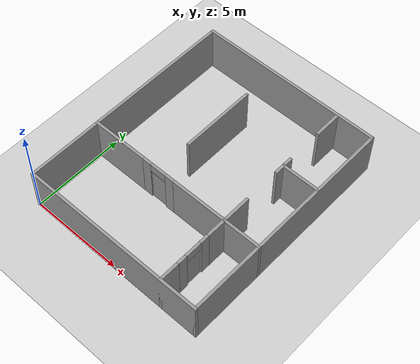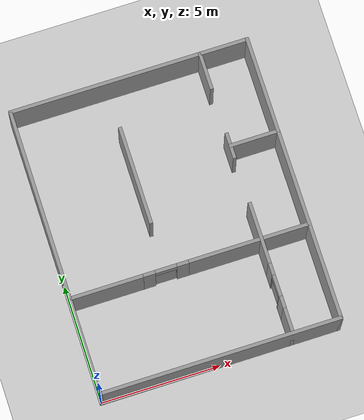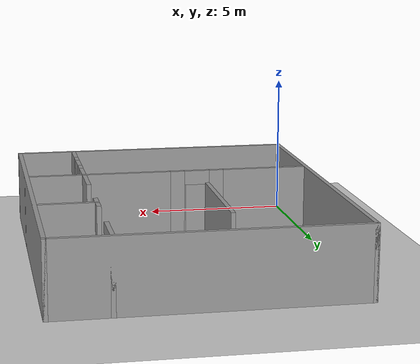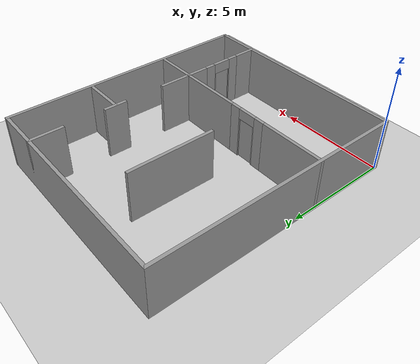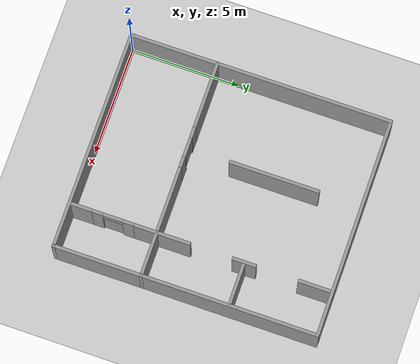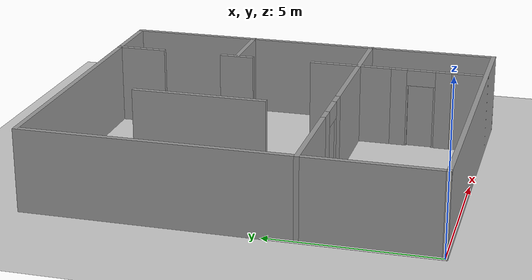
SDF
<sdf version="1.7">
 <world name="default">
  <model name="ground_plane">
   <static>1</static>
   <link name="link">
    <collision name="collision">
     <geometry><plane><normal>0 0 1</normal><size>100 100</size></plane></geometry>
     <surface><friction><ode><mu>100</mu><mu2>50</mu2></ode></friction></surface>
    </collision>
    <visual name="visual">
     <cast_shadows>0</cast_shadows>
     <geometry><plane><normal>0 0 1</normal><size>100 100</size></plane></geometry>
     <material>
      <script><uri>file://media/materials/scripts/gazebo.material</uri><name>Gazebo/Grey</name></script>
     </material>
    </visual>
   </link>
  </model>
  <model name="laboratory">
   <link name="Wall_0">
    <pose>0 -6 0 0 -0 0</pose>
    <visual name="Wall_0_Visual">
     <pose>0 0 1.25 0 -0 0</pose>
     <geometry><box><size>10.15 0.15 2.5</size></box></geometry>
     <material>
      <script><uri>file://media/materials/scripts/gazebo.material</uri><name>Gazebo/Grey</name></script>
      <ambient>1 1 1 1</ambient>
      <shader type="pixel"/>
     </material>
     <meta><layer>0</layer></meta>
    </visual>
    <collision name="Wall_0_Collision">
     <pose>0 0 1.25 0 -0 0</pose>
     <geometry><box><size>10.15 0.15 2.5</size></box></geometry>
     <surface>
      <friction>
       <ode><mu>1</mu><mu2>1</mu2><fdir1>0 0 0</fdir1><slip1>0</slip1><slip2>0</slip2></ode>
       <torsional>
        <coefficient>1</coefficient>
        <patch_radius>0</patch_radius>
        <surface_radius>0</surface_radius>
        <use_patch_radius>1</use_patch_radius>
        <ode><slip>0</slip></ode>
       </torsional>
      </friction>
      <bounce><restitution_coefficient>0</restitution_coefficient><threshold>1e+06</threshold></bounce>
      <contact>
       <collide_without_contact>0</collide_without_contact>
       <collide_without_contact_bitmask>1</collide_without_contact_bitmask>
       <collide_bitmask>1</collide_bitmask>
       <ode>
        <soft_cfm>0</soft_cfm>
        <soft_erp>0.2</soft_erp>
        <kp>1e+13</kp>
        <kd>1</kd>
        <max_vel>0.01</max_vel>
        <min_depth>0</min_depth>
       </ode>
       <bullet>
        <split_impulse>1</split_impulse>
        <split_impulse_penetration_threshold>-0.01</split_impulse_penetration_threshold>
        <soft_cfm>0</soft_cfm>
        <soft_erp>0.2</soft_erp>
        <kp>1e+13</kp>
        <kd>1</kd>
       </bullet>
      </contact>
     </surface>
    </collision>
   </link>
   <link name="Wall_10">
    <pose>-1 -2 0 0 -0 0</pose>
    <visual name="Wall_10_Visual_0">
     <pose>-2.5125 0 1.25 0 -0 0</pose>
     <geometry><box><size>3.125 0.15 2.5</size></box></geometry>
     <material>
      <script><uri>file://media/materials/scripts/gazebo.material</uri><name>Gazebo/Grey</name></script>
      <ambient>1 1 1 1</ambient>
      <shader type="pixel"/>
     </material>
     <meta><layer>0</layer></meta>
    </visual>
    <visual name="Wall_10_Visual_1">
     <pose>2.5125 0 1.25 0 -0 0</pose>
     <geometry><box><size>3.125 0.15 2.5</size></box></geometry>
     <material>
      <script><uri>file://media/materials/scripts/gazebo.material</uri><name>Gazebo/Grey</name></script>
      <ambient>1 1 1 1</ambient>
      <shader type="pixel"/>
     </material>
     <meta><layer>0</layer></meta>
    </visual>
    <collision name="Wall_10_Collision_0">
     <pose>-2.5125 0 1.25 0 -0 0</pose>
     <geometry><box><size>3.125 0.15 2.5</size></box></geometry>
     <surface>
      <friction>
       <ode><mu>1</mu><mu2>1</mu2><fdir1>0 0 0</fdir1><slip1>0</slip1><slip2>0</slip2></ode>
       <torsional>
        <coefficient>1</coefficient>
        <patch_radius>0</patch_radius>
        <surface_radius>0</surface_radius>
        <use_patch_radius>1</use_patch_radius>
        <ode><slip>0</slip></ode>
       </torsional>
      </friction>
      <bounce><restitution_coefficient>0</restitution_coefficient><threshold>1e+06</threshold></bounce>
      <contact>
       <collide_without_contact>0</collide_without_contact>
       <collide_without_contact_bitmask>1</collide_without_contact_bitmask>
       <collide_bitmask>1</collide_bitmask>
       <ode>
        <soft_cfm>0</soft_cfm>
        <soft_erp>0.2</soft_erp>
        <kp>1e+13</kp>
        <kd>1</kd>
        <max_vel>0.01</max_vel>
        <min_depth>0</min_depth>
       </ode>
       <bullet>
        <split_impulse>1</split_impulse>
        <split_impulse_penetration_threshold>-0.01</split_impulse_penetration_threshold>
        <soft_cfm>0</soft_cfm>
        <soft_erp>0.2</soft_erp>
        <kp>1e+13</kp>
        <kd>1</kd>
       </bullet>
      </contact>
     </surface>
    </collision>
    <collision name="Wall_10_Collision_1">
     <pose>2.5125 0 1.25 0 -0 0</pose>
     <geometry><box><size>3.125 0.15 2.5</size></box></geometry>
     <surface>
      <friction>
       <ode><mu>1</mu><mu2>1</mu2><fdir1>0 0 0</fdir1><slip1>0</slip1><slip2>0</slip2></ode>
       <torsional>
        <coefficient>1</coefficient>
        <patch_radius>0</patch_radius>
        <surface_radius>0</surface_radius>
        <use_patch_radius>1</use_patch_radius>
        <ode><slip>0</slip></ode>
       </torsional>
      </friction>
      <bounce><restitution_coefficient>0</restitution_coefficient><threshold>1e+06</threshold></bounce>
      <contact>
       <collide_without_contact>0</collide_without_contact>
       <collide_without_contact_bitmask>1</collide_without_contact_bitmask>
       <collide_bitmask>1</collide_bitmask>
       <ode>
        <soft_cfm>0</soft_cfm>
        <soft_erp>0.2</soft_erp>
        <kp>1e+13</kp>
        <kd>1</kd>
        <max_vel>0.01</max_vel>
        <min_depth>0</min_depth>
       </ode>
       <bullet>
        <split_impulse>1</split_impulse>
        <split_impulse_penetration_threshold>-0.01</split_impulse_penetration_threshold>
        <soft_cfm>0</soft_cfm>
        <soft_erp>0.2</soft_erp>
        <kp>1e+13</kp>
        <kd>1</kd>
       </bullet>
      </contact>
     </surface>
    </collision>
   </link>
   <link name="Wall_12">
    <pose>4 2 0 0 -0 0</pose>
    <visual name="Wall_12_Visual">
     <pose>0 0 1.25 0 -0 0</pose>
     <geometry><box><size>2.15 0.15 2.5</size></box></geometry>
     <material>
      <script><uri>file://media/materials/scripts/gazebo.material</uri><name>Gazebo/Grey</name></script>
      <ambient>1 1 1 1</ambient>
      <shader type="pixel"/>
     </material>
     <meta><layer>0</layer></meta>
    </visual>
    <collision name="Wall_12_Collision">
     <pose>0 0 1.25 0 -0 0</pose>
     <geometry><box><size>2.15 0.15 2.5</size></box></geometry>
     <surface>
      <friction>
       <ode><mu>1</mu><mu2>1</mu2><fdir1>0 0 0</fdir1><slip1>0</slip1><slip2>0</slip2></ode>
       <torsional>
        <coefficient>1</coefficient>
        <patch_radius>0</patch_radius>
        <surface_radius>0</surface_radius>
        <use_patch_radius>1</use_patch_radius>
        <ode><slip>0</slip></ode>
       </torsional>
      </friction>
      <bounce><restitution_coefficient>0</restitution_coefficient><threshold>1e+06</threshold></bounce>
      <contact>
       <collide_without_contact>0</collide_without_contact>
       <collide_without_contact_bitmask>1</collide_without_contact_bitmask>
       <collide_bitmask>1</collide_bitmask>
       <ode>
        <soft_cfm>0</soft_cfm>
        <soft_erp>0.2</soft_erp>
        <kp>1e+13</kp>
        <kd>1</kd>
        <max_vel>0.01</max_vel>
        <min_depth>0</min_depth>
       </ode>
       <bullet>
        <split_impulse>1</split_impulse>
        <split_impulse_penetration_threshold>-0.01</split_impulse_penetration_threshold>
        <soft_cfm>0</soft_cfm>
        <soft_erp>0.2</soft_erp>
        <kp>1e+13</kp>
        <kd>1</kd>
       </bullet>
      </contact>
     </surface>
    </collision>
   </link>
   <link name="Wall_15">
    <pose>4 -2 0 0 -0 0</pose>
    <visual name="Wall_15_Visual">
     <pose>0 0 1.25 0 -0 0</pose>
     <geometry><box><size>2.15 0.15 2.5</size></box></geometry>
     <material>
      <script><uri>file://media/materials/scripts/gazebo.material</uri><name>Gazebo/Grey</name></script>
      <ambient>1 1 1 1</ambient>
      <shader type="pixel"/>
     </material>
     <meta><layer>0</layer></meta>
    </visual>
    <collision name="Wall_15_Collision">
     <pose>0 0 1.25 0 -0 0</pose>
     <geometry><box><size>2.15 0.15 2.5</size></box></geometry>
     <surface>
      <friction>
       <ode><mu>1</mu><mu2>1</mu2><fdir1>0 0 0</fdir1><slip1>0</slip1><slip2>0</slip2></ode>
       <torsional>
        <coefficient>1</coefficient>
        <patch_radius>0</patch_radius>
        <surface_radius>0</surface_radius>
        <use_patch_radius>1</use_patch_radius>
        <ode><slip>0</slip></ode>
       </torsional>
      </friction>
      <bounce><restitution_coefficient>0</restitution_coefficient><threshold>1e+06</threshold></bounce>
      <contact>
       <collide_without_contact>0</collide_without_contact>
       <collide_without_contact_bitmask>1</collide_without_contact_bitmask>
       <collide_bitmask>1</collide_bitmask>
       <ode>
        <soft_cfm>0</soft_cfm>
        <soft_erp>0.2</soft_erp>
        <kp>1e+13</kp>
        <kd>1</kd>
        <max_vel>0.01</max_vel>
        <min_depth>0</min_depth>
       </ode>
       <bullet>
        <split_impulse>1</split_impulse>
        <split_impulse_penetration_threshold>-0.01</split_impulse_penetration_threshold>
        <soft_cfm>0</soft_cfm>
        <soft_erp>0.2</soft_erp>
        <kp>1e+13</kp>
        <kd>1</kd>
       </bullet>
      </contact>
     </surface>
    </collision>
   </link>
   <link name="Wall_17">
    <pose>-1 2 0 0 -0 1.5708</pose>
    <visual name="Wall_17_Visual">
     <pose>0 0 1.25 0 -0 0</pose>
     <geometry><box><size>4.15 0.15 2.5</size></box></geometry>
     <material>
      <script><uri>file://media/materials/scripts/gazebo.material</uri><name>Gazebo/Grey</name></script>
      <ambient>1 1 1 1</ambient>
      <shader type="pixel"/>
     </material>
     <meta><layer>0</layer></meta>
    </visual>
    <collision name="Wall_17_Collision">
     <pose>0 0 1.25 0 -0 0</pose>
     <geometry><box><size>4.15 0.15 2.5</size></box></geometry>
     <surface>
      <friction>
       <ode><mu>1</mu><mu2>1</mu2><fdir1>0 0 0</fdir1><slip1>0</slip1><slip2>0</slip2></ode>
       <torsional>
        <coefficient>1</coefficient>
        <patch_radius>0</patch_radius>
        <surface_radius>0</surface_radius>
        <use_patch_radius>1</use_patch_radius>
        <ode><slip>0</slip></ode>
       </torsional>
      </friction>
      <bounce><restitution_coefficient>0</restitution_coefficient><threshold>1e+06</threshold></bounce>
      <contact>
       <collide_without_contact>0</collide_without_contact>
       <collide_without_contact_bitmask>1</collide_without_contact_bitmask>
       <collide_bitmask>1</collide_bitmask>
       <ode>
        <soft_cfm>0</soft_cfm>
        <soft_erp>0.2</soft_erp>
        <kp>1e+13</kp>
        <kd>1</kd>
        <max_vel>0.01</max_vel>
        <min_depth>0</min_depth>
       </ode>
       <bullet>
        <split_impulse>1</split_impulse>
        <split_impulse_penetration_threshold>-0.01</split_impulse_penetration_threshold>
        <soft_cfm>0</soft_cfm>
        <soft_erp>0.2</soft_erp>
        <kp>1e+13</kp>
        <kd>1</kd>
       </bullet>
      </contact>
     </surface>
    </collision>
   </link>
   <link name="Wall_2">
    <pose>-5 0 0 0 -0 1.5708</pose>
    <visual name="Wall_2_Visual">
     <pose>0 0 1.25 0 -0 0</pose>
     <geometry><box><size>12.15 0.15 2.5</size></box></geometry>
     <material>
      <script><uri>file://media/materials/scripts/gazebo.material</uri><name>Gazebo/Grey</name></script>
      <ambient>1 1 1 1</ambient>
      <shader type="pixel"/>
     </material>
     <meta><layer>0</layer></meta>
    </visual>
    <collision name="Wall_2_Collision">
     <pose>0 0 1.25 0 -0 0</pose>
     <geometry><box><size>12.15 0.15 2.5</size></box></geometry>
     <surface>
      <friction>
       <ode><mu>1</mu><mu2>1</mu2><fdir1>0 0 0</fdir1><slip1>0</slip1><slip2>0</slip2></ode>
       <torsional>
        <coefficient>1</coefficient>
        <patch_radius>0</patch_radius>
        <surface_radius>0</surface_radius>
        <use_patch_radius>1</use_patch_radius>
        <ode><slip>0</slip></ode>
       </torsional>
      </friction>
      <bounce><restitution_coefficient>0</restitution_coefficient><threshold>1e+06</threshold></bounce>
      <contact>
       <collide_without_contact>0</collide_without_contact>
       <collide_without_contact_bitmask>1</collide_without_contact_bitmask>
       <collide_bitmask>1</collide_bitmask>
       <ode>
        <soft_cfm>0</soft_cfm>
        <soft_erp>0.2</soft_erp>
        <kp>1e+13</kp>
        <kd>1</kd>
        <max_vel>0.01</max_vel>
        <min_depth>0</min_depth>
       </ode>
       <bullet>
        <split_impulse>1</split_impulse>
        <split_impulse_penetration_threshold>-0.01</split_impulse_penetration_threshold>
        <soft_cfm>0</soft_cfm>
        <soft_erp>0.2</soft_erp>
        <kp>1e+13</kp>
        <kd>1</kd>
       </bullet>
      </contact>
     </surface>
    </collision>
   </link>
   <link name="Wall_4">
    <pose>0 6 0 0 -0 0</pose>
    <visual name="Wall_4_Visual">
     <pose>0 0 1.25 0 -0 0</pose>
     <geometry><box><size>10.15 0.15 2.5</size></box></geometry>
     <material>
      <script><uri>file://media/materials/scripts/gazebo.material</uri><name>Gazebo/Grey</name></script>
      <ambient>1 1 1 1</ambient>
      <shader type="pixel"/>
     </material>
     <meta><layer>0</layer></meta>
    </visual>
    <collision name="Wall_4_Collision">
     <pose>0 0 1.25 0 -0 0</pose>
     <geometry><box><size>10.15 0.15 2.5</size></box></geometry>
     <surface>
      <friction>
       <ode><mu>1</mu><mu2>1</mu2><fdir1>0 0 0</fdir1><slip1>0</slip1><slip2>0</slip2></ode>
       <torsional>
        <coefficient>1</coefficient>
        <patch_radius>0</patch_radius>
        <surface_radius>0</surface_radius>
        <use_patch_radius>1</use_patch_radius>
        <ode><slip>0</slip></ode>
       </torsional>
      </friction>
      <bounce><restitution_coefficient>0</restitution_coefficient><threshold>1e+06</threshold></bounce>
      <contact>
       <collide_without_contact>0</collide_without_contact>
       <collide_without_contact_bitmask>1</collide_without_contact_bitmask>
       <collide_bitmask>1</collide_bitmask>
       <ode>
        <soft_cfm>0</soft_cfm>
        <soft_erp>0.2</soft_erp>
        <kp>1e+13</kp>
        <kd>1</kd>
        <max_vel>0.01</max_vel>
        <min_depth>0</min_depth>
       </ode>
       <bullet>
        <split_impulse>1</split_impulse>
        <split_impulse_penetration_threshold>-0.01</split_impulse_penetration_threshold>
        <soft_cfm>0</soft_cfm>
        <soft_erp>0.2</soft_erp>
        <kp>1e+13</kp>
        <kd>1</kd>
       </bullet>
      </contact>
     </surface>
    </collision>
   </link>
   <link name="Wall_6">
    <pose>5 0 0 0 0 -1.5708</pose>
    <visual name="Wall_6_Visual">
     <pose>0 0 1.25 0 -0 0</pose>
     <geometry><box><size>12.15 0.15 2.5</size></box></geometry>
     <material>
      <script><uri>file://media/materials/scripts/gazebo.material</uri><name>Gazebo/Grey</name></script>
      <ambient>1 1 1 1</ambient>
      <shader type="pixel"/>
     </material>
     <meta><layer>0</layer></meta>
    </visual>
    <collision name="Wall_6_Collision">
     <pose>0 0 1.25 0 -0 0</pose>
     <geometry><box><size>12.15 0.15 2.5</size></box></geometry>
     <surface>
      <friction>
       <ode><mu>1</mu><mu2>1</mu2><fdir1>0 0 0</fdir1><slip1>0</slip1><slip2>0</slip2></ode>
       <torsional>
        <coefficient>1</coefficient>
        <patch_radius>0</patch_radius>
        <surface_radius>0</surface_radius>
        <use_patch_radius>1</use_patch_radius>
        <ode><slip>0</slip></ode>
       </torsional>
      </friction>
      <bounce><restitution_coefficient>0</restitution_coefficient><threshold>1e+06</threshold></bounce>
      <contact>
       <collide_without_contact>0</collide_without_contact>
       <collide_without_contact_bitmask>1</collide_without_contact_bitmask>
       <collide_bitmask>1</collide_bitmask>
       <ode>
        <soft_cfm>0</soft_cfm>
        <soft_erp>0.2</soft_erp>
        <kp>1e+13</kp>
        <kd>1</kd>
        <max_vel>0.01</max_vel>
        <min_depth>0</min_depth>
       </ode>
       <bullet>
        <split_impulse>1</split_impulse>
        <split_impulse_penetration_threshold>-0.01</split_impulse_penetration_threshold>
        <soft_cfm>0</soft_cfm>
        <soft_erp>0.2</soft_erp>
        <kp>1e+13</kp>
        <kd>1</kd>
       </bullet>
      </contact>
     </surface>
    </collision>
   </link>
   <link name="Wall_8">
    <pose>3 0 0 0 -0 1.5708</pose>
    <inertial>
     <mass>1</mass>
     <inertia><ixx>1</ixx><ixy>0</ixy><ixz>0</ixz><iyy>1</iyy><iyz>0</iyz><izz>1</izz></inertia>
    </inertial>
    <visual name="Wall_8_Visual_0">
     <pose>-5.5125 0 1.25 0 -0 0</pose>
     <geometry><box><size>1.125 0.15 2.5</size></box></geometry>
     <material>
      <script><uri>file://media/materials/scripts/gazebo.material</uri><name>Gazebo/Grey</name></script>
      <ambient>1 1 1 1</ambient>
      <shader type="pixel"><normal_map>__default__</normal_map></shader>
      <diffuse>0.7 0.7 0.7 1</diffuse>
      <specular>0.01 0.01 0.01 1</specular>
      <emissive>0 0 0 1</emissive>
     </material>
     <meta><layer>0</layer></meta>
    </visual>
    <visual name="Wall_8_Visual_1">
     <pose>-1.75 0 1.25 0 -0 0</pose>
     <geometry><box><size>2.6 0.15 2.5</size></box></geometry>
     <material>
      <script><uri>file://media/materials/scripts/gazebo.material</uri><name>Gazebo/Grey</name></script>
      <ambient>1 1 1 1</ambient>
      <shader type="pixel"><normal_map>__default__</normal_map></shader>
      <diffuse>0.7 0.7 0.7 1</diffuse>
      <specular>0.01 0.01 0.01 1</specular>
      <emissive>0 0 0 1</emissive>
     </material>
     <meta><layer>0</layer></meta>
    </visual>
    <visual name="Wall_8_Visual_2">
     <pose>2 0 1.25 0 -0 0</pose>
     <geometry><box><size>1.1 0.15 2.5</size></box></geometry>
     <material>
      <script><uri>file://media/materials/scripts/gazebo.material</uri><name>Gazebo/Grey</name></script>
      <ambient>1 1 1 1</ambient>
      <shader type="pixel"><normal_map>__default__</normal_map></shader>
      <diffuse>0.7 0.7 0.7 1</diffuse>
      <specular>0.01 0.01 0.01 1</specular>
      <emissive>0 0 0 1</emissive>
     </material>
     <meta><layer>0</layer></meta>
    </visual>
    <visual name="Wall_8_Visual_3">
     <pose>5.2625 0 1.25 0 -0 0</pose>
     <geometry><box><size>1.625 0.15 2.5</size></box></geometry>
     <material>
      <script><uri>file://media/materials/scripts/gazebo.material</uri><name>Gazebo/Grey</name></script>
      <ambient>1 1 1 1</ambient>
      <shader type="pixel"><normal_map>__default__</normal_map></shader>
      <diffuse>0.7 0.7 0.7 1</diffuse>
      <specular>0.01 0.01 0.01 1</specular>
      <emissive>0 0 0 1</emissive>
     </material>
     <meta><layer>0</layer></meta>
    </visual>
    <collision name="Wall_8_Collision_0">
     <pose>-5.5125 0 1.25 0 -0 0</pose>
     <geometry><box><size>1.125 0.15 2.5</size></box></geometry>
     <surface>
      <friction>
       <ode><mu>1</mu><mu2>1</mu2><fdir1>0 0 0</fdir1><slip1>0</slip1><slip2>0</slip2></ode>
       <torsional>
        <coefficient>1</coefficient>
        <patch_radius>0</patch_radius>
        <surface_radius>0</surface_radius>
        <use_patch_radius>1</use_patch_radius>
        <ode><slip>0</slip></ode>
       </torsional>
      </friction>
      <bounce><restitution_coefficient>0</restitution_coefficient><threshold>1e+06</threshold></bounce>
      <contact>
       <collide_without_contact>0</collide_without_contact>
       <collide_without_contact_bitmask>1</collide_without_contact_bitmask>
       <collide_bitmask>1</collide_bitmask>
       <ode>
        <soft_cfm>0</soft_cfm>
        <soft_erp>0.2</soft_erp>
        <kp>1e+13</kp>
        <kd>1</kd>
        <max_vel>0.01</max_vel>
        <min_depth>0</min_depth>
       </ode>
       <bullet>
        <split_impulse>1</split_impulse>
        <split_impulse_penetration_threshold>-0.01</split_impulse_penetration_threshold>
        <soft_cfm>0</soft_cfm>
        <soft_erp>0.2</soft_erp>
        <kp>1e+13</kp>
        <kd>1</kd>
       </bullet>
      </contact>
     </surface>
    </collision>
    <collision name="Wall_8_Collision_2">
     <pose>2 0 1.25 0 -0 0</pose>
     <geometry><box><size>1.1 0.15 2.5</size></box></geometry>
     <surface>
      <friction>
       <ode><mu>1</mu><mu2>1</mu2><fdir1>0 0 0</fdir1><slip1>0</slip1><slip2>0</slip2></ode>
       <torsional>
        <coefficient>1</coefficient>
        <patch_radius>0</patch_radius>
        <surface_radius>0</surface_radius>
        <use_patch_radius>1</use_patch_radius>
        <ode><slip>0</slip></ode>
       </torsional>
      </friction>
      <bounce><restitution_coefficient>0</restitution_coefficient><threshold>1e+06</threshold></bounce>
      <contact>
       <collide_without_contact>0</collide_without_contact>
       <collide_without_contact_bitmask>1</collide_without_contact_bitmask>
       <collide_bitmask>1</collide_bitmask>
       <ode>
        <soft_cfm>0</soft_cfm>
        <soft_erp>0.2</soft_erp>
        <kp>1e+13</kp>
        <kd>1</kd>
        <max_vel>0.01</max_vel>
        <min_depth>0</min_depth>
       </ode>
       <bullet>
        <split_impulse>1</split_impulse>
        <split_impulse_penetration_threshold>-0.01</split_impulse_penetration_threshold>
        <soft_cfm>0</soft_cfm>
        <soft_erp>0.2</soft_erp>
        <kp>1e+13</kp>
        <kd>1</kd>
       </bullet>
      </contact>
     </surface>
    </collision>
    <collision name="Wall_8_Collision_1">
     <pose>-1.75 0 1.25 0 -0 0</pose>
     <geometry><box><size>2.6 0.15 2.5</size></box></geometry>
     <surface>
      <friction>
       <ode><mu>1</mu><mu2>1</mu2><fdir1>0 0 0</fdir1><slip1>0</slip1><slip2>0</slip2></ode>
       <torsional>
        <coefficient>1</coefficient>
        <patch_radius>0</patch_radius>
        <surface_radius>0</surface_radius>
        <use_patch_radius>1</use_patch_radius>
        <ode><slip>0</slip></ode>
       </torsional>
      </friction>
      <bounce><restitution_coefficient>0</restitution_coefficient><threshold>1e+06</threshold></bounce>
      <contact>
       <collide_without_contact>0</collide_without_contact>
       <collide_without_contact_bitmask>1</collide_without_contact_bitmask>
       <collide_bitmask>1</collide_bitmask>
       <ode>
        <soft_cfm>0</soft_cfm>
        <soft_erp>0.2</soft_erp>
        <kp>1e+13</kp>
        <kd>1</kd>
        <max_vel>0.01</max_vel>
        <min_depth>0</min_depth>
       </ode>
       <bullet>
        <split_impulse>1</split_impulse>
        <split_impulse_penetration_threshold>-0.01</split_impulse_penetration_threshold>
        <soft_cfm>0</soft_cfm>
        <soft_erp>0.2</soft_erp>
        <kp>1e+13</kp>
        <kd>1</kd>
       </bullet>
      </contact>
     </surface>
    </collision>
    <collision name="Wall_8_Collision_3">
     <pose>5.2625 0 1.25 0 -0 0</pose>
     <geometry><box><size>1.625 0.15 2.5</size></box></geometry>
     <surface>
      <friction>
       <ode><mu>1</mu><mu2>1</mu2><fdir1>0 0 0</fdir1><slip1>0</slip1><slip2>0</slip2></ode>
       <torsional>
        <coefficient>1</coefficient>
        <patch_radius>0</patch_radius>
        <surface_radius>0</surface_radius>
        <use_patch_radius>1</use_patch_radius>
        <ode><slip>0</slip></ode>
       </torsional>
      </friction>
      <bounce><restitution_coefficient>0</restitution_coefficient><threshold>1e+06</threshold></bounce>
      <contact>
       <collide_without_contact>0</collide_without_contact>
       <collide_without_contact_bitmask>1</collide_without_contact_bitmask>
       <collide_bitmask>1</collide_bitmask>
       <ode>
        <soft_cfm>0</soft_cfm>
        <soft_erp>0.2</soft_erp>
        <kp>1e+13</kp>
        <kd>1</kd>
        <max_vel>0.01</max_vel>
        <min_depth>0</min_depth>
       </ode>
       <bullet>
        <split_impulse>1</split_impulse>
        <split_impulse_penetration_threshold>-0.01</split_impulse_penetration_threshold>
        <soft_cfm>0</soft_cfm>
        <soft_erp>0.2</soft_erp>
        <kp>1e+13</kp>
        <kd>1</kd>
       </bullet>
      </contact>
     </surface>
    </collision>
   </link>
   <static>1</static>
   <pose>5 6 0 0 -0 0</pose>
  </model>
  <model name="wall_with_door_no_gap">
   <link name="Wall">
    <pose>0 0 0 0 -4e-06 0</pose>
    <inertial>
     <inertia><ixx>1</ixx><ixy>0</ixy><ixz>0</ixz><iyy>1</iyy><iyz>0</iyz><izz>1</izz></inertia>
     <mass>1</mass>
    </inertial>
    <visual name="Wall_Visual_4">
     <pose>0.425 -0.055 1 0 -0 0</pose>
     <geometry><box><size>0.05 0.04 2</size></box></geometry>
     <material>
      <script><uri>file://media/materials/scripts/gazebo.material</uri><name>Gazebo/Grey</name></script>
      <ambient>1 1 1 1</ambient>
      <shader type="pixel"><normal_map>__default__</normal_map></shader>
      <emissive>0 0 0 1</emissive>
      <diffuse>0.7 0.7 0.7 1</diffuse>
      <specular>0.01 0.01 0.01 1</specular>
     </material>
     <meta><layer>0</layer></meta>
    </visual>
    <visual name="Wall_Visual_0">
     <pose>-0.7 0 1.25 0 -0 0</pose>
     <geometry><box><size>0.5 0.15 2.5</size></box></geometry>
     <material>
      <script><uri>file://media/materials/scripts/gazebo.material</uri><name>Gazebo/Grey</name></script>
      <ambient>1 1 1 1</ambient>
      <shader type="pixel"><normal_map>__default__</normal_map></shader>
      <emissive>0 0 0 1</emissive>
      <diffuse>0.7 0.7 0.7 1</diffuse>
      <specular>0.01 0.01 0.01 1</specular>
     </material>
     <meta><layer>0</layer></meta>
    </visual>
    <visual name="Wall_visual_3">
     <pose>-0.425 -0.055 1 0 -0 0</pose>
     <geometry><box><size>0.05 0.04 2</size></box></geometry>
     <material>
      <script><uri>file://media/materials/scripts/gazebo.material</uri><name>Gazebo/Grey</name></script>
      <ambient>1 1 1 1</ambient>
      <shader type="pixel"><normal_map>__default__</normal_map></shader>
      <emissive>0 0 0 1</emissive>
      <diffuse>0.7 0.7 0.7 1</diffuse>
      <specular>0.01 0.01 0.01 1</specular>
     </material>
     <meta><layer>0</layer></meta>
    </visual>
    <visual name="Wall_Visual_1">
     <pose>0.7 0 1.25 0 -0 0</pose>
     <geometry><box><size>0.5 0.15 2.5</size></box></geometry>
     <material>
      <script><uri>file://media/materials/scripts/gazebo.material</uri><name>Gazebo/Grey</name></script>
      <ambient>1 1 1 1</ambient>
      <shader type="pixel"><normal_map>__default__</normal_map></shader>
      <emissive>0 0 0 1</emissive>
      <diffuse>0.7 0.7 0.7 1</diffuse>
      <specular>0.01 0.01 0.01 1</specular>
     </material>
     <meta><layer>0</layer></meta>
    </visual>
    <visual name="Wall_Visual_2">
     <pose>0 0 2.25 0 -0 0</pose>
     <geometry><box><size>0.9 0.15 0.5</size></box></geometry>
     <material>
      <script><uri>file://media/materials/scripts/gazebo.material</uri><name>Gazebo/Grey</name></script>
      <ambient>1 1 1 1</ambient>
      <shader type="pixel"><normal_map>__default__</normal_map></shader>
      <emissive>0 0 0 1</emissive>
      <diffuse>0.7 0.7 0.7 1</diffuse>
      <specular>0.01 0.01 0.01 1</specular>
     </material>
     <meta><layer>0</layer></meta>
    </visual>
    <collision name="Wall_Collision_3">
     <pose>-0.425 -0.055 1 0 -0 0</pose>
     <geometry><box><size>0.05 0.04 2</size></box></geometry>
     <surface>
      <friction>
       <ode><mu>1</mu><mu2>1</mu2><fdir1>0 0 0</fdir1><slip1>0</slip1><slip2>0</slip2></ode>
       <torsional>
        <coefficient>1</coefficient>
        <patch_radius>0</patch_radius>
        <surface_radius>0</surface_radius>
        <use_patch_radius>1</use_patch_radius>
        <ode><slip>0</slip></ode>
       </torsional>
      </friction>
      <bounce><restitution_coefficient>0</restitution_coefficient><threshold>1e+06</threshold></bounce>
      <contact>
       <collide_without_contact>0</collide_without_contact>
       <collide_without_contact_bitmask>1</collide_without_contact_bitmask>
       <collide_bitmask>1</collide_bitmask>
       <ode>
        <soft_cfm>0</soft_cfm>
        <soft_erp>0.2</soft_erp>
        <kp>1e+13</kp>
        <kd>1</kd>
        <max_vel>0.01</max_vel>
        <min_depth>0</min_depth>
       </ode>
       <bullet>
        <split_impulse>1</split_impulse>
        <split_impulse_penetration_threshold>-0.01</split_impulse_penetration_threshold>
        <soft_cfm>0</soft_cfm>
        <soft_erp>0.2</soft_erp>
        <kp>1e+13</kp>
        <kd>1</kd>
       </bullet>
      </contact>
     </surface>
    </collision>
    <collision name="Wall_Collision_4">
     <pose>0.425 -0.055 1 0 -0 0</pose>
     <geometry><box><size>0.05 0.04 2</size></box></geometry>
     <surface>
      <friction>
       <ode><mu>1</mu><mu2>1</mu2><fdir1>0 0 0</fdir1><slip1>0</slip1><slip2>0</slip2></ode>
       <torsional>
        <coefficient>1</coefficient>
        <patch_radius>0</patch_radius>
        <surface_radius>0</surface_radius>
        <use_patch_radius>1</use_patch_radius>
        <ode><slip>0</slip></ode>
       </torsional>
      </friction>
      <bounce><restitution_coefficient>0</restitution_coefficient><threshold>1e+06</threshold></bounce>
      <contact>
       <collide_without_contact>0</collide_without_contact>
       <collide_without_contact_bitmask>1</collide_without_contact_bitmask>
       <collide_bitmask>1</collide_bitmask>
       <ode>
        <soft_cfm>0</soft_cfm>
        <soft_erp>0.2</soft_erp>
        <kp>1e+13</kp>
        <kd>1</kd>
        <max_vel>0.01</max_vel>
        <min_depth>0</min_depth>
       </ode>
       <bullet>
        <split_impulse>1</split_impulse>
        <split_impulse_penetration_threshold>-0.01</split_impulse_penetration_threshold>
        <soft_cfm>0</soft_cfm>
        <soft_erp>0.2</soft_erp>
        <kp>1e+13</kp>
        <kd>1</kd>
       </bullet>
      </contact>
     </surface>
    </collision>
    <collision name="Wall_Collision_1">
     <pose>0.7 0 1.25 0 -0 0</pose>
     <geometry><box><size>0.5 0.15 2.5</size></box></geometry>
     <surface>
      <friction>
       <ode><mu>1</mu><mu2>1</mu2><fdir1>0 0 0</fdir1><slip1>0</slip1><slip2>0</slip2></ode>
       <torsional>
        <coefficient>1</coefficient>
        <patch_radius>0</patch_radius>
        <surface_radius>0</surface_radius>
        <use_patch_radius>1</use_patch_radius>
        <ode><slip>0</slip></ode>
       </torsional>
      </friction>
      <bounce><restitution_coefficient>0</restitution_coefficient><threshold>1e+06</threshold></bounce>
      <contact>
       <collide_without_contact>0</collide_without_contact>
       <collide_without_contact_bitmask>1</collide_without_contact_bitmask>
       <collide_bitmask>1</collide_bitmask>
       <ode>
        <soft_cfm>0</soft_cfm>
        <soft_erp>0.2</soft_erp>
        <kp>1e+13</kp>
        <kd>1</kd>
        <max_vel>0.01</max_vel>
        <min_depth>0</min_depth>
       </ode>
       <bullet>
        <split_impulse>1</split_impulse>
        <split_impulse_penetration_threshold>-0.01</split_impulse_penetration_threshold>
        <soft_cfm>0</soft_cfm>
        <soft_erp>0.2</soft_erp>
        <kp>1e+13</kp>
        <kd>1</kd>
       </bullet>
      </contact>
     </surface>
    </collision>
    <collision name="Wall_Collision_0">
     <pose>-0.7 0 1.25 0 -0 0</pose>
     <geometry><box><size>0.5 0.15 2.5</size></box></geometry>
     <surface>
      <friction>
       <ode><mu>1</mu><mu2>1</mu2><fdir1>0 0 0</fdir1><slip1>0</slip1><slip2>0</slip2></ode>
       <torsional>
        <coefficient>1</coefficient>
        <patch_radius>0</patch_radius>
        <surface_radius>0</surface_radius>
        <use_patch_radius>1</use_patch_radius>
        <ode><slip>0</slip></ode>
       </torsional>
      </friction>
      <bounce><restitution_coefficient>0</restitution_coefficient><threshold>1e+06</threshold></bounce>
      <contact>
       <collide_without_contact>0</collide_without_contact>
       <collide_without_contact_bitmask>1</collide_without_contact_bitmask>
       <collide_bitmask>1</collide_bitmask>
       <ode>
        <soft_cfm>0</soft_cfm>
        <soft_erp>0.2</soft_erp>
        <kp>1e+13</kp>
        <kd>1</kd>
        <max_vel>0.01</max_vel>
        <min_depth>0</min_depth>
       </ode>
       <bullet>
        <split_impulse>1</split_impulse>
        <split_impulse_penetration_threshold>-0.01</split_impulse_penetration_threshold>
        <soft_cfm>0</soft_cfm>
        <soft_erp>0.2</soft_erp>
        <kp>1e+13</kp>
        <kd>1</kd>
       </bullet>
      </contact>
     </surface>
    </collision>
    <collision name="Wall_Collision_2">
     <pose>0 0 2.25 0 -0 0</pose>
     <geometry><box><size>0.9 0.15 0.5</size></box></geometry>
     <surface>
      <friction>
       <ode><mu>1</mu><mu2>1</mu2><fdir1>0 0 0</fdir1><slip1>0</slip1><slip2>0</slip2></ode>
       <torsional>
        <coefficient>1</coefficient>
        <patch_radius>0</patch_radius>
        <surface_radius>0</surface_radius>
        <use_patch_radius>1</use_patch_radius>
        <ode><slip>0</slip></ode>
       </torsional>
      </friction>
      <bounce><restitution_coefficient>0</restitution_coefficient><threshold>1e+06</threshold></bounce>
      <contact>
       <collide_without_contact>0</collide_without_contact>
       <collide_without_contact_bitmask>1</collide_without_contact_bitmask>
       <collide_bitmask>1</collide_bitmask>
       <ode>
        <soft_cfm>0</soft_cfm>
        <soft_erp>0.2</soft_erp>
        <kp>1e+13</kp>
        <kd>1</kd>
        <max_vel>0.01</max_vel>
        <min_depth>0</min_depth>
       </ode>
       <bullet>
        <split_impulse>1</split_impulse>
        <split_impulse_penetration_threshold>-0.01</split_impulse_penetration_threshold>
        <soft_cfm>0</soft_cfm>
        <soft_erp>0.2</soft_erp>
        <kp>1e+13</kp>
        <kd>1</kd>
       </bullet>
      </contact>
     </surface>
    </collision>
    <static>1</static>
   </link>
   <link name="door">
    <inertial>
     <mass>1</mass>
     <inertia>
      <ixx>0.166667</ixx>
      <ixy>0</ixy>
      <ixz>0</ixz>
      <iyy>0.166667</iyy>
      <iyz>0</iyz>
      <izz>0.166667</izz>
     </inertia>
    </inertial>
    <pose>-0 -0 1 0 -4e-06 0</pose>
    <visual name="visual">
     <pose>0.01 0 0 0 -0 0</pose>
     <geometry><box><size>0.86 0.04 2</size></box></geometry>
     <material>
      <lighting>1</lighting>
      <script><uri>file://media/materials/scripts/gazebo.material</uri><name>Gazebo/Grey</name></script>
      <shader type="pixel"><normal_map>__default__</normal_map></shader>
      <ambient>0.3 0.3 0.3 1</ambient>
      <diffuse>0.7 0.7 0.7 1</diffuse>
      <specular>0.01 0.01 0.01 1</specular>
      <emissive>0 0 0 1</emissive>
     </material>
    </visual>
    <collision name="collision">
     <pose>0.01 0 0 0 -0 0</pose>
     <geometry><box><size>0.84 0.04 2</size></box></geometry>
     <surface>
      <friction>
       <ode><mu>1</mu><mu2>1</mu2><fdir1>0 0 0</fdir1><slip1>0</slip1><slip2>0</slip2></ode>
       <torsional>
        <coefficient>1</coefficient>
        <patch_radius>0</patch_radius>
        <surface_radius>0</surface_radius>
        <use_patch_radius>1</use_patch_radius>
        <ode><slip>0</slip></ode>
       </torsional>
      </friction>
      <bounce><restitution_coefficient>0</restitution_coefficient><threshold>1e+06</threshold></bounce>
      <contact>
       <collide_without_contact>0</collide_without_contact>
       <collide_without_contact_bitmask>1</collide_without_contact_bitmask>
       <collide_bitmask>1</collide_bitmask>
       <ode>
        <soft_cfm>0</soft_cfm>
        <soft_erp>0.2</soft_erp>
        <kp>1e+13</kp>
        <kd>1</kd>
        <max_vel>0.01</max_vel>
        <min_depth>0</min_depth>
       </ode>
       <bullet>
        <split_impulse>1</split_impulse>
        <split_impulse_penetration_threshold>-0.01</split_impulse_penetration_threshold>
        <soft_cfm>0</soft_cfm>
        <soft_erp>0.2</soft_erp>
        <kp>1e+13</kp>
        <kd>1</kd>
       </bullet>
      </contact>
     </surface>
    </collision>
    <static>0</static>
   </link>
   <joint name="Door_JOINT" type="revolute">
    <parent>Wall</parent>
    <child>door</child>
    <pose>-0.43 0 0 0 -0 0</pose>
    <axis>
     <xyz>0 0 1</xyz>
     <limit><lower>0</lower><upper>1.57</upper><effort>-1</effort><velocity>-1</velocity></limit>
     <dynamics>
      <spring_reference>0</spring_reference>
      <spring_stiffness>0</spring_stiffness>
      <damping>0</damping>
      <friction>0</friction>
     </dynamics>
    </axis>
    <physics>
     <ode><limit><cfm>0</cfm><erp>0.2</erp></limit><suspension><cfm>0</cfm><erp>0.2</erp></suspension></ode>
    </physics>
   </joint>
   <joint name="WALL_FIXED" type="fixed"><parent>world</parent><child>Wall</child></joint>
   <plugin name="wall_and_door_plugin" filename="libDoorControlPlugin.so"/>
   <static>0</static>
   <pose>4 4 0 0 -0 3.14</pose>
  </model>
  <model name="wall_with_door_no_gap_0">
   <link name="Wall">
    <pose>0 0 0 0 -4e-06 0</pose>
    <inertial>
     <inertia><ixx>1</ixx><ixy>0</ixy><ixz>0</ixz><iyy>1</iyy><iyz>0</iyz><izz>1</izz></inertia>
     <mass>1</mass>
    </inertial>
    <visual name="Wall_Visual_4">
     <pose>0.425 -0.055 1 0 -0 0</pose>
     <geometry><box><size>0.05 0.04 2</size></box></geometry>
     <material>
      <script><uri>file://media/materials/scripts/gazebo.material</uri><name>Gazebo/Grey</name></script>
      <ambient>1 1 1 1</ambient>
      <shader type="pixel"><normal_map>__default__</normal_map></shader>
      <emissive>0 0 0 1</emissive>
      <diffuse>0.7 0.7 0.7 1</diffuse>
      <specular>0.01 0.01 0.01 1</specular>
     </material>
     <meta><layer>0</layer></meta>
    </visual>
    <visual name="Wall_Visual_0">
     <pose>-0.7 0 1.25 0 -0 0</pose>
     <geometry><box><size>0.5 0.15 2.5</size></box></geometry>
     <material>
      <script><uri>file://media/materials/scripts/gazebo.material</uri><name>Gazebo/Grey</name></script>
      <ambient>1 1 1 1</ambient>
      <shader type="pixel"><normal_map>__default__</normal_map></shader>
      <emissive>0 0 0 1</emissive>
      <diffuse>0.7 0.7 0.7 1</diffuse>
      <specular>0.01 0.01 0.01 1</specular>
     </material>
     <meta><layer>0</layer></meta>
    </visual>
    <visual name="Wall_visual_3">
     <pose>-0.425 -0.055 1 0 -0 0</pose>
     <geometry><box><size>0.05 0.04 2</size></box></geometry>
     <material>
      <script><uri>file://media/materials/scripts/gazebo.material</uri><name>Gazebo/Grey</name></script>
      <ambient>1 1 1 1</ambient>
      <shader type="pixel"><normal_map>__default__</normal_map></shader>
      <emissive>0 0 0 1</emissive>
      <diffuse>0.7 0.7 0.7 1</diffuse>
      <specular>0.01 0.01 0.01 1</specular>
     </material>
     <meta><layer>0</layer></meta>
    </visual>
    <visual name="Wall_Visual_1">
     <pose>0.7 0 1.25 0 -0 0</pose>
     <geometry><box><size>0.5 0.15 2.5</size></box></geometry>
     <material>
      <script><uri>file://media/materials/scripts/gazebo.material</uri><name>Gazebo/Grey</name></script>
      <ambient>1 1 1 1</ambient>
      <shader type="pixel"><normal_map>__default__</normal_map></shader>
      <emissive>0 0 0 1</emissive>
      <diffuse>0.7 0.7 0.7 1</diffuse>
      <specular>0.01 0.01 0.01 1</specular>
     </material>
     <meta><layer>0</layer></meta>
    </visual>
    <visual name="Wall_Visual_2">
     <pose>0 0 2.25 0 -0 0</pose>
     <geometry><box><size>0.9 0.15 0.5</size></box></geometry>
     <material>
      <script><uri>file://media/materials/scripts/gazebo.material</uri><name>Gazebo/Grey</name></script>
      <ambient>1 1 1 1</ambient>
      <shader type="pixel"><normal_map>__default__</normal_map></shader>
      <emissive>0 0 0 1</emissive>
      <diffuse>0.7 0.7 0.7 1</diffuse>
      <specular>0.01 0.01 0.01 1</specular>
     </material>
     <meta><layer>0</layer></meta>
    </visual>
    <collision name="Wall_Collision_3">
     <pose>-0.425 -0.055 1 0 -0 0</pose>
     <geometry><box><size>0.05 0.04 2</size></box></geometry>
     <surface>
      <friction>
       <ode><mu>1</mu><mu2>1</mu2><fdir1>0 0 0</fdir1><slip1>0</slip1><slip2>0</slip2></ode>
       <torsional>
        <coefficient>1</coefficient>
        <patch_radius>0</patch_radius>
        <surface_radius>0</surface_radius>
        <use_patch_radius>1</use_patch_radius>
        <ode><slip>0</slip></ode>
       </torsional>
      </friction>
      <bounce><restitution_coefficient>0</restitution_coefficient><threshold>1e+06</threshold></bounce>
      <contact>
       <collide_without_contact>0</collide_without_contact>
       <collide_without_contact_bitmask>1</collide_without_contact_bitmask>
       <collide_bitmask>1</collide_bitmask>
       <ode>
        <soft_cfm>0</soft_cfm>
        <soft_erp>0.2</soft_erp>
        <kp>1e+13</kp>
        <kd>1</kd>
        <max_vel>0.01</max_vel>
        <min_depth>0</min_depth>
       </ode>
       <bullet>
        <split_impulse>1</split_impulse>
        <split_impulse_penetration_threshold>-0.01</split_impulse_penetration_threshold>
        <soft_cfm>0</soft_cfm>
        <soft_erp>0.2</soft_erp>
        <kp>1e+13</kp>
        <kd>1</kd>
       </bullet>
      </contact>
     </surface>
    </collision>
    <collision name="Wall_Collision_4">
     <pose>0.425 -0.055 1 0 -0 0</pose>
     <geometry><box><size>0.05 0.04 2</size></box></geometry>
     <surface>
      <friction>
       <ode><mu>1</mu><mu2>1</mu2><fdir1>0 0 0</fdir1><slip1>0</slip1><slip2>0</slip2></ode>
       <torsional>
        <coefficient>1</coefficient>
        <patch_radius>0</patch_radius>
        <surface_radius>0</surface_radius>
        <use_patch_radius>1</use_patch_radius>
        <ode><slip>0</slip></ode>
       </torsional>
      </friction>
      <bounce><restitution_coefficient>0</restitution_coefficient><threshold>1e+06</threshold></bounce>
      <contact>
       <collide_without_contact>0</collide_without_contact>
       <collide_without_contact_bitmask>1</collide_without_contact_bitmask>
       <collide_bitmask>1</collide_bitmask>
       <ode>
        <soft_cfm>0</soft_cfm>
        <soft_erp>0.2</soft_erp>
        <kp>1e+13</kp>
        <kd>1</kd>
        <max_vel>0.01</max_vel>
        <min_depth>0</min_depth>
       </ode>
       <bullet>
        <split_impulse>1</split_impulse>
        <split_impulse_penetration_threshold>-0.01</split_impulse_penetration_threshold>
        <soft_cfm>0</soft_cfm>
        <soft_erp>0.2</soft_erp>
        <kp>1e+13</kp>
        <kd>1</kd>
       </bullet>
      </contact>
     </surface>
    </collision>
    <collision name="Wall_Collision_1">
     <pose>0.7 0 1.25 0 -0 0</pose>
     <geometry><box><size>0.5 0.15 2.5</size></box></geometry>
     <surface>
      <friction>
       <ode><mu>1</mu><mu2>1</mu2><fdir1>0 0 0</fdir1><slip1>0</slip1><slip2>0</slip2></ode>
       <torsional>
        <coefficient>1</coefficient>
        <patch_radius>0</patch_radius>
        <surface_radius>0</surface_radius>
        <use_patch_radius>1</use_patch_radius>
        <ode><slip>0</slip></ode>
       </torsional>
      </friction>
      <bounce><restitution_coefficient>0</restitution_coefficient><threshold>1e+06</threshold></bounce>
      <contact>
       <collide_without_contact>0</collide_without_contact>
       <collide_without_contact_bitmask>1</collide_without_contact_bitmask>
       <collide_bitmask>1</collide_bitmask>
       <ode>
        <soft_cfm>0</soft_cfm>
        <soft_erp>0.2</soft_erp>
        <kp>1e+13</kp>
        <kd>1</kd>
        <max_vel>0.01</max_vel>
        <min_depth>0</min_depth>
       </ode>
       <bullet>
        <split_impulse>1</split_impulse>
        <split_impulse_penetration_threshold>-0.01</split_impulse_penetration_threshold>
        <soft_cfm>0</soft_cfm>
        <soft_erp>0.2</soft_erp>
        <kp>1e+13</kp>
        <kd>1</kd>
       </bullet>
      </contact>
     </surface>
    </collision>
    <collision name="Wall_Collision_0">
     <pose>-0.7 0 1.25 0 -0 0</pose>
     <geometry><box><size>0.5 0.15 2.5</size></box></geometry>
     <surface>
      <friction>
       <ode><mu>1</mu><mu2>1</mu2><fdir1>0 0 0</fdir1><slip1>0</slip1><slip2>0</slip2></ode>
       <torsional>
        <coefficient>1</coefficient>
        <patch_radius>0</patch_radius>
        <surface_radius>0</surface_radius>
        <use_patch_radius>1</use_patch_radius>
        <ode><slip>0</slip></ode>
       </torsional>
      </friction>
      <bounce><restitution_coefficient>0</restitution_coefficient><threshold>1e+06</threshold></bounce>
      <contact>
       <collide_without_contact>0</collide_without_contact>
       <collide_without_contact_bitmask>1</collide_without_contact_bitmask>
       <collide_bitmask>1</collide_bitmask>
       <ode>
        <soft_cfm>0</soft_cfm>
        <soft_erp>0.2</soft_erp>
        <kp>1e+13</kp>
        <kd>1</kd>
        <max_vel>0.01</max_vel>
        <min_depth>0</min_depth>
       </ode>
       <bullet>
        <split_impulse>1</split_impulse>
        <split_impulse_penetration_threshold>-0.01</split_impulse_penetration_threshold>
        <soft_cfm>0</soft_cfm>
        <soft_erp>0.2</soft_erp>
        <kp>1e+13</kp>
        <kd>1</kd>
       </bullet>
      </contact>
     </surface>
    </collision>
    <collision name="Wall_Collision_2">
     <pose>0 0 2.25 0 -0 0</pose>
     <geometry><box><size>0.9 0.15 0.5</size></box></geometry>
     <surface>
      <friction>
       <ode><mu>1</mu><mu2>1</mu2><fdir1>0 0 0</fdir1><slip1>0</slip1><slip2>0</slip2></ode>
       <torsional>
        <coefficient>1</coefficient>
        <patch_radius>0</patch_radius>
        <surface_radius>0</surface_radius>
        <use_patch_radius>1</use_patch_radius>
        <ode><slip>0</slip></ode>
       </torsional>
      </friction>
      <bounce><restitution_coefficient>0</restitution_coefficient><threshold>1e+06</threshold></bounce>
      <contact>
       <collide_without_contact>0</collide_without_contact>
       <collide_without_contact_bitmask>1</collide_without_contact_bitmask>
       <collide_bitmask>1</collide_bitmask>
       <ode>
        <soft_cfm>0</soft_cfm>
        <soft_erp>0.2</soft_erp>
        <kp>1e+13</kp>
        <kd>1</kd>
        <max_vel>0.01</max_vel>
        <min_depth>0</min_depth>
       </ode>
       <bullet>
        <split_impulse>1</split_impulse>
        <split_impulse_penetration_threshold>-0.01</split_impulse_penetration_threshold>
        <soft_cfm>0</soft_cfm>
        <soft_erp>0.2</soft_erp>
        <kp>1e+13</kp>
        <kd>1</kd>
       </bullet>
      </contact>
     </surface>
    </collision>
    <static>1</static>
   </link>
   <link name="door">
    <inertial>
     <mass>1</mass>
     <inertia>
      <ixx>0.166667</ixx>
      <ixy>0</ixy>
      <ixz>0</ixz>
      <iyy>0.166667</iyy>
      <iyz>0</iyz>
      <izz>0.166667</izz>
     </inertia>
    </inertial>
    <pose>-0 -0 1 0 -4e-06 0</pose>
    <visual name="visual">
     <pose>0.01 0 0 0 -0 0</pose>
     <geometry><box><size>0.86 0.04 2</size></box></geometry>
     <material>
      <lighting>1</lighting>
      <script><uri>file://media/materials/scripts/gazebo.material</uri><name>Gazebo/Grey</name></script>
      <shader type="pixel"><normal_map>__default__</normal_map></shader>
      <ambient>0.3 0.3 0.3 1</ambient>
      <diffuse>0.7 0.7 0.7 1</diffuse>
      <specular>0.01 0.01 0.01 1</specular>
      <emissive>0 0 0 1</emissive>
     </material>
    </visual>
    <collision name="collision">
     <pose>0.01 0 0 0 -0 0</pose>
     <geometry><box><size>0.84 0.04 2</size></box></geometry>
     <surface>
      <friction>
       <ode><mu>1</mu><mu2>1</mu2><fdir1>0 0 0</fdir1><slip1>0</slip1><slip2>0</slip2></ode>
       <torsional>
        <coefficient>1</coefficient>
        <patch_radius>0</patch_radius>
        <surface_radius>0</surface_radius>
        <use_patch_radius>1</use_patch_radius>
        <ode><slip>0</slip></ode>
       </torsional>
      </friction>
      <bounce><restitution_coefficient>0</restitution_coefficient><threshold>1e+06</threshold></bounce>
      <contact>
       <collide_without_contact>0</collide_without_contact>
       <collide_without_contact_bitmask>1</collide_without_contact_bitmask>
       <collide_bitmask>1</collide_bitmask>
       <ode>
        <soft_cfm>0</soft_cfm>
        <soft_erp>0.2</soft_erp>
        <kp>1e+13</kp>
        <kd>1</kd>
        <max_vel>0.01</max_vel>
        <min_depth>0</min_depth>
       </ode>
       <bullet>
        <split_impulse>1</split_impulse>
        <split_impulse_penetration_threshold>-0.01</split_impulse_penetration_threshold>
        <soft_cfm>0</soft_cfm>
        <soft_erp>0.2</soft_erp>
        <kp>1e+13</kp>
        <kd>1</kd>
       </bullet>
      </contact>
     </surface>
    </collision>
    <static>0</static>
   </link>
   <joint name="Door_JOINT" type="revolute">
    <parent>Wall</parent>
    <child>door</child>
    <pose>-0.43 0 0 0 -0 0</pose>
    <axis>
     <xyz>0 0 1</xyz>
     <limit><lower>0</lower><upper>1.57</upper><effort>-1</effort><velocity>-1</velocity></limit>
     <dynamics>
      <spring_reference>0</spring_reference>
      <spring_stiffness>0</spring_stiffness>
      <damping>0</damping>
      <friction>0</friction>
     </dynamics>
    </axis>
    <physics>
     <ode><limit><cfm>0</cfm><erp>0.2</erp></limit><suspension><cfm>0</cfm><erp>0.2</erp></suspension></ode>
    </physics>
   </joint>
   <joint name="WALL_FIXED" type="fixed"><parent>world</parent><child>Wall</child></joint>
   <plugin name="wall_and_door_plugin" filename="libDoorControlPlugin.so"/>
   <static>0</static>
   <pose>8 2 0 0 0 -1.57</pose>
  </model>
 </world>
</sdf>
